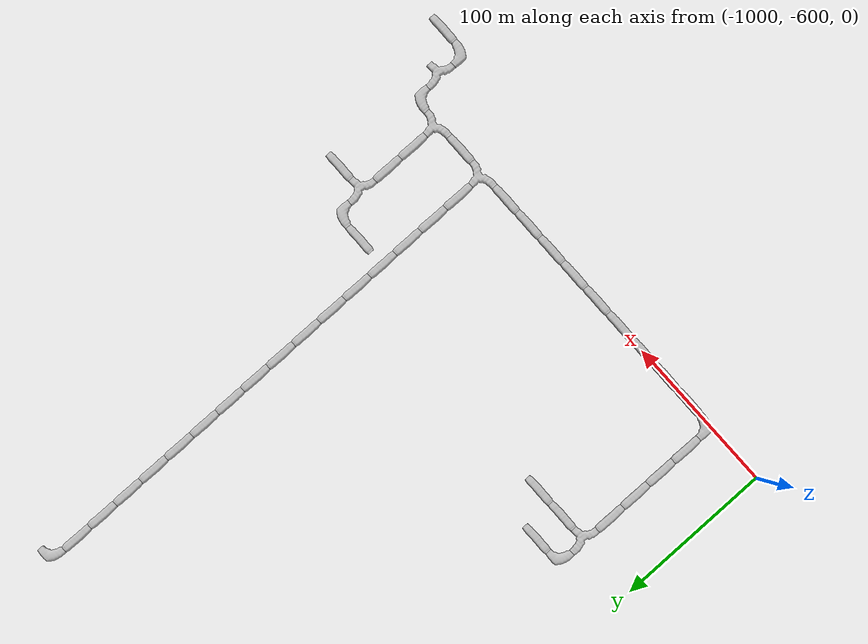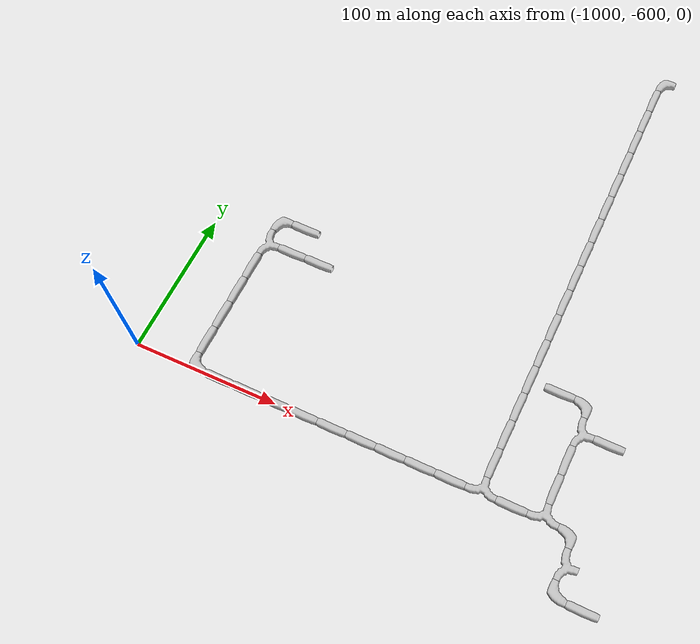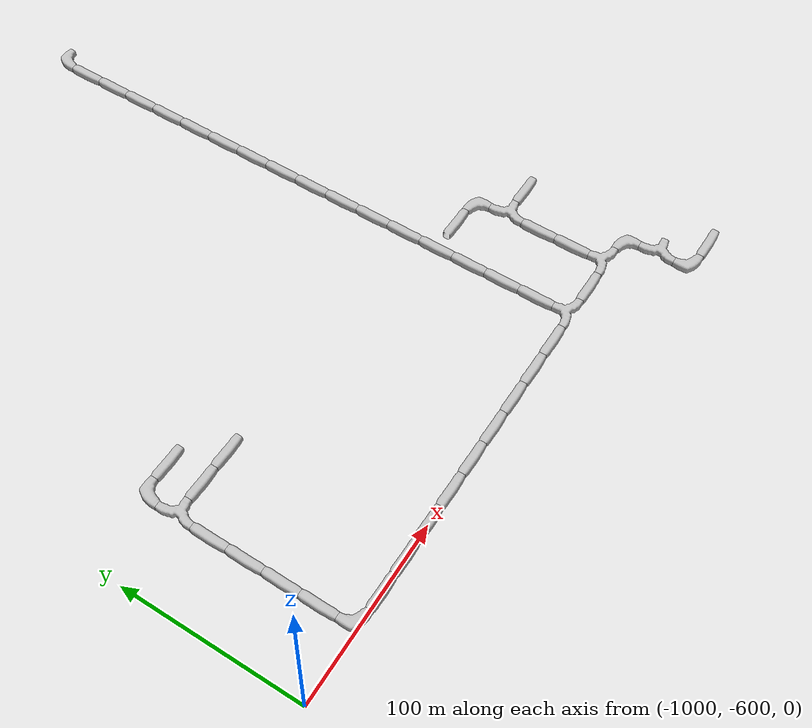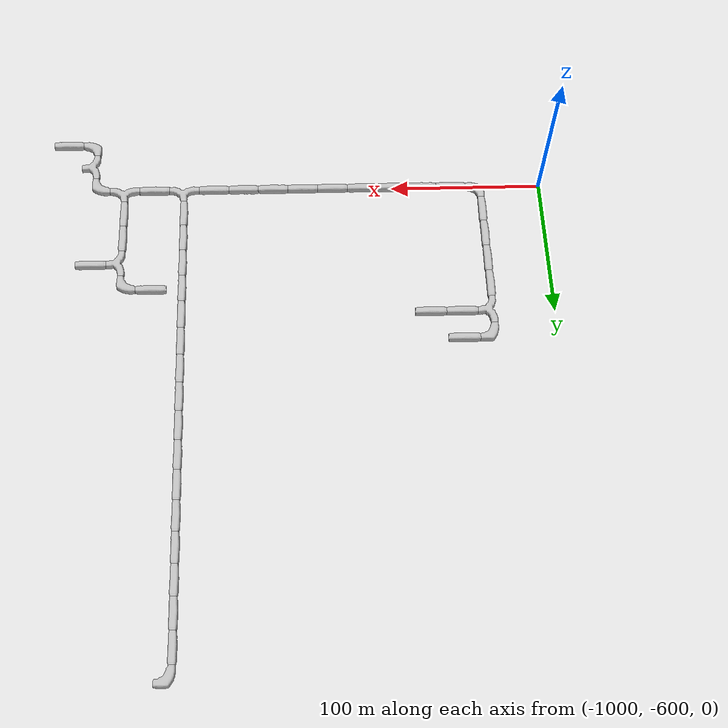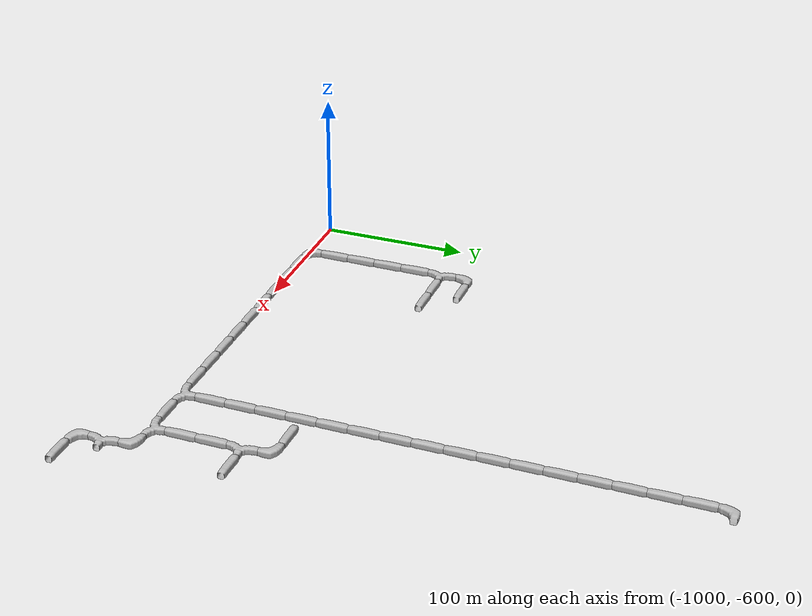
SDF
<sdf version="1.6">
 <world name="cave_8000">
  <include>
   <static>true</static>
   <name>cave_-34_-32</name>
   <pose>-680 -640 0 0 0 1.5707963267948966</pose>
   <uri>model://cave_straight_20m</uri>
  </include>
  <include>
   <static>true</static>
   <name>cave_-35_-32</name>
   <pose>-700 -640 0 0 0 0.0</pose>
   <uri>model://cave_L_20m</uri>
  </include>
  <include>
   <static>true</static>
   <name>cave_-35_-31</name>
   <pose>-700 -620 0 0 0 -1.5707963267948966</pose>
   <uri>model://cave_3way_20m</uri>
  </include>
  <include>
   <static>true</static>
   <name>cave_-35_-30</name>
   <pose>-700 -600 0 0 0 3.141592653589793</pose>
   <uri>model://cave_L_20m</uri>
  </include>
  <include>
   <static>true</static>
   <name>cave_-36_-30</name>
   <pose>-720 -600 0 0 0 0.0</pose>
   <uri>model://cave_3way_20m</uri>
  </include>
  <include>
   <static>true</static>
   <name>cave_-37_-30</name>
   <pose>-740 -600 0 0 0 1.5707963267948966</pose>
   <uri>model://cave_straight_20m</uri>
  </include>
  <include>
   <static>true</static>
   <name>cave_-38_-30</name>
   <pose>-760 -600 0 0 0 0.0</pose>
   <uri>model://cave_3way_20m</uri>
  </include>
  <include>
   <static>true</static>
   <name>cave_-39_-30</name>
   <pose>-780 -600 0 0 0 1.5707963267948966</pose>
   <uri>model://cave_straight_20m</uri>
  </include>
  <include>
   <static>true</static>
   <name>cave_-40_-30</name>
   <pose>-800 -600 0 0 0 1.5707963267948966</pose>
   <uri>model://cave_straight_20m</uri>
  </include>
  <include>
   <static>true</static>
   <name>cave_-41_-30</name>
   <pose>-820 -600 0 0 0 1.5707963267948966</pose>
   <uri>model://cave_straight_20m</uri>
  </include>
  <include>
   <static>true</static>
   <name>cave_-42_-30</name>
   <pose>-840 -600 0 0 0 1.5707963267948966</pose>
   <uri>model://cave_straight_20m</uri>
  </include>
  <include>
   <static>true</static>
   <name>cave_-43_-30</name>
   <pose>-860 -600 0 0 0 1.5707963267948966</pose>
   <uri>model://cave_straight_20m</uri>
  </include>
  <include>
   <static>true</static>
   <name>cave_-44_-30</name>
   <pose>-880 -600 0 0 0 1.5707963267948966</pose>
   <uri>model://cave_straight_20m</uri>
  </include>
  <include>
   <static>true</static>
   <name>cave_-45_-30</name>
   <pose>-900 -600 0 0 0 1.5707963267948966</pose>
   <uri>model://cave_straight_20m</uri>
  </include>
  <include>
   <static>true</static>
   <name>cave_-46_-30</name>
   <pose>-920 -600 0 0 0 1.5707963267948966</pose>
   <uri>model://cave_straight_20m</uri>
  </include>
  <include>
   <static>true</static>
   <name>cave_-47_-30</name>
   <pose>-940 -600 0 0 0 1.5707963267948966</pose>
   <uri>model://cave_straight_20m</uri>
  </include>
  <include>
   <static>true</static>
   <name>cave_-48_-30</name>
   <pose>-960 -600 0 0 0 0.0</pose>
   <uri>model://cave_L_20m</uri>
  </include>
  <include>
   <static>true</static>
   <name>cave_-48_-29</name>
   <pose>-960 -580 0 0 0 0.0</pose>
   <uri>model://cave_straight_20m</uri>
  </include>
  <include>
   <static>true</static>
   <name>cave_-48_-28</name>
   <pose>-960 -560 0 0 0 0.0</pose>
   <uri>model://cave_straight_20m</uri>
  </include>
  <include>
   <static>true</static>
   <name>cave_-48_-27</name>
   <pose>-960 -540 0 0 0 0.0</pose>
   <uri>model://cave_straight_20m</uri>
  </include>
  <include>
   <static>true</static>
   <name>cave_-48_-26</name>
   <pose>-960 -520 0 0 0 0.0</pose>
   <uri>model://cave_straight_20m</uri>
  </include>
  <include>
   <static>true</static>
   <name>cave_-48_-25</name>
   <pose>-960 -500 0 0 0 -1.5707963267948966</pose>
   <uri>model://cave_3way_20m</uri>
  </include>
  <include>
   <static>true</static>
   <name>cave_-47_-25</name>
   <pose>-940 -500 0 0 0 1.5707963267948966</pose>
   <uri>model://cave_straight_20m</uri>
  </include>
  <include>
   <static>true</static>
   <name>cave_-46_-25</name>
   <pose>-920 -500 0 0 0 1.5707963267948966</pose>
   <uri>model://cave_straight_20m</uri>
  </include>
  <include>
   <static>true</static>
   <name>cave_-48_-24</name>
   <pose>-960 -480 0 0 0 -1.5707963267948966</pose>
   <uri>model://cave_L_20m</uri>
  </include>
  <include>
   <static>true</static>
   <name>cave_-47_-24</name>
   <pose>-940 -480 0 0 0 1.5707963267948966</pose>
   <uri>model://cave_straight_20m</uri>
  </include>
  <include>
   <static>true</static>
   <name>cave_-38_-29</name>
   <pose>-760 -580 0 0 0 0.0</pose>
   <uri>model://cave_straight_20m</uri>
  </include>
  <include>
   <static>true</static>
   <name>cave_-38_-28</name>
   <pose>-760 -560 0 0 0 0.0</pose>
   <uri>model://cave_straight_20m</uri>
  </include>
  <include>
   <static>true</static>
   <name>cave_-38_-27</name>
   <pose>-760 -540 0 0 0 0.0</pose>
   <uri>model://cave_straight_20m</uri>
  </include>
  <include>
   <static>true</static>
   <name>cave_-38_-26</name>
   <pose>-760 -520 0 0 0 0.0</pose>
   <uri>model://cave_straight_20m</uri>
  </include>
  <include>
   <static>true</static>
   <name>cave_-38_-25</name>
   <pose>-760 -500 0 0 0 0.0</pose>
   <uri>model://cave_straight_20m</uri>
  </include>
  <include>
   <static>true</static>
   <name>cave_-38_-24</name>
   <pose>-760 -480 0 0 0 0.0</pose>
   <uri>model://cave_straight_20m</uri>
  </include>
  <include>
   <static>true</static>
   <name>cave_-38_-23</name>
   <pose>-760 -460 0 0 0 0.0</pose>
   <uri>model://cave_straight_20m</uri>
  </include>
  <include>
   <static>true</static>
   <name>cave_-38_-22</name>
   <pose>-760 -440 0 0 0 0.0</pose>
   <uri>model://cave_straight_20m</uri>
  </include>
  <include>
   <static>true</static>
   <name>cave_-38_-21</name>
   <pose>-760 -420 0 0 0 0.0</pose>
   <uri>model://cave_straight_20m</uri>
  </include>
  <include>
   <static>true</static>
   <name>cave_-38_-20</name>
   <pose>-760 -400 0 0 0 0.0</pose>
   <uri>model://cave_straight_20m</uri>
  </include>
  <include>
   <static>true</static>
   <name>cave_-38_-19</name>
   <pose>-760 -380 0 0 0 0.0</pose>
   <uri>model://cave_straight_20m</uri>
  </include>
  <include>
   <static>true</static>
   <name>cave_-38_-18</name>
   <pose>-760 -360 0 0 0 0.0</pose>
   <uri>model://cave_straight_20m</uri>
  </include>
  <include>
   <static>true</static>
   <name>cave_-38_-17</name>
   <pose>-760 -340 0 0 0 0.0</pose>
   <uri>model://cave_straight_20m</uri>
  </include>
  <include>
   <static>true</static>
   <name>cave_-38_-16</name>
   <pose>-760 -320 0 0 0 0.0</pose>
   <uri>model://cave_straight_20m</uri>
  </include>
  <include>
   <static>true</static>
   <name>cave_-38_-15</name>
   <pose>-760 -300 0 0 0 0.0</pose>
   <uri>model://cave_straight_20m</uri>
  </include>
  <include>
   <static>true</static>
   <name>cave_-38_-14</name>
   <pose>-760 -280 0 0 0 0.0</pose>
   <uri>model://cave_straight_20m</uri>
  </include>
  <include>
   <static>true</static>
   <name>cave_-38_-13</name>
   <pose>-760 -260 0 0 0 -1.5707963267948966</pose>
   <uri>model://cave_L_20m</uri>
  </include>
  <include>
   <static>true</static>
   <name>cave_-36_-29</name>
   <pose>-720 -580 0 0 0 0.0</pose>
   <uri>model://cave_straight_20m</uri>
  </include>
  <include>
   <static>true</static>
   <name>cave_-36_-28</name>
   <pose>-720 -560 0 0 0 0.0</pose>
   <uri>model://cave_straight_20m</uri>
  </include>
  <include>
   <static>true</static>
   <name>cave_-36_-27</name>
   <pose>-720 -540 0 0 0 -1.5707963267948966</pose>
   <uri>model://cave_3way_20m</uri>
  </include>
  <include>
   <static>true</static>
   <name>cave_-35_-27</name>
   <pose>-700 -540 0 0 0 1.5707963267948966</pose>
   <uri>model://cave_straight_20m</uri>
  </include>
  <include>
   <static>true</static>
   <name>cave_-36_-26</name>
   <pose>-720 -520 0 0 0 3.141592653589793</pose>
   <uri>model://cave_L_20m</uri>
  </include>
  <include>
   <static>true</static>
   <name>cave_-37_-26</name>
   <pose>-740 -520 0 0 0 1.5707963267948966</pose>
   <uri>model://cave_straight_20m</uri>
  </include>
 </world>
</sdf>
